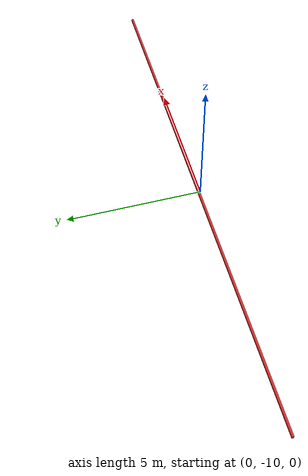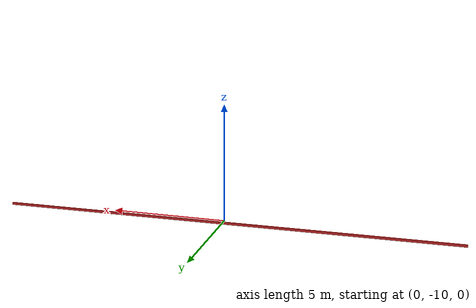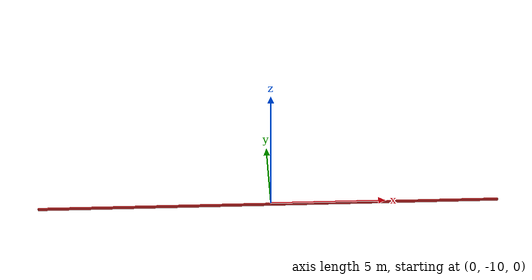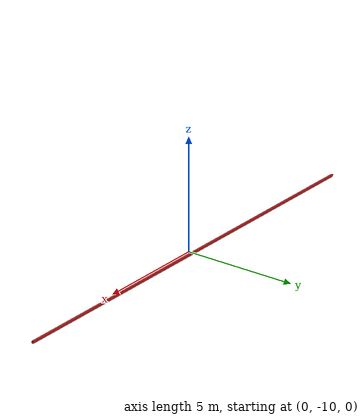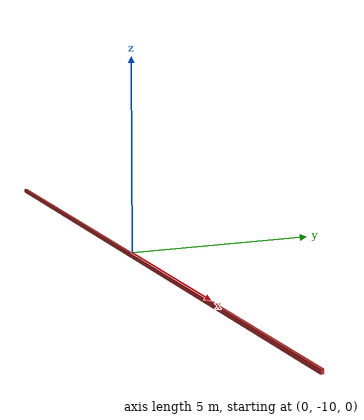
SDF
<?xml version="1.0" ?>
<sdf version="1.5">
  <model name="red_line">
    <pose> 0 -9.96 -0.1 0 0 0 </pose>
    <static>true</static>
    <link name="link">
      <collision name="collision">
        <geometry>
          <box>
            <size>20 0.08 .1</size>
          </box>
        </geometry>
      </collision>
      <visual name="visual">
        <cast_shadows>false</cast_shadows>
        <geometry>
          <box>
            <size>20 0.08 0.101</size>
          </box>
        </geometry>
        <material>
          <script>
            <uri>model://red_line/materials/scripts</uri>
            <uri>model://red_line/materials/textures</uri>
            <name>vrc/red</name>
          </script>
        </material>
      </visual>
    </link>
  </model>
</sdf>
